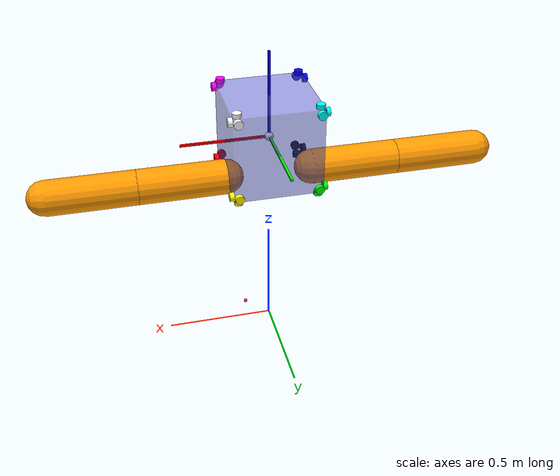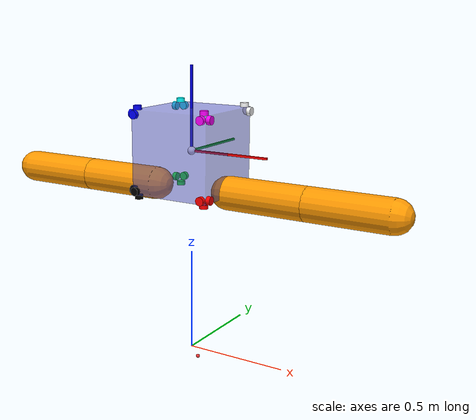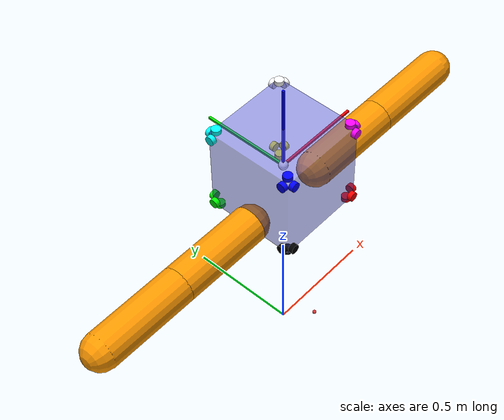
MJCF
<mujoco model="thrustbox0">
	<compiler angle="degree" coordinate="local" inertiafromgeom="true"/>
	<option timestep="0.01" gravity="0 0 0" density="1" viscosity="1e-5" integrator="RK4"/>
	<visual>
		<map force="0.1" zfar="30"/>
		<rgba haze="0.15 0.25 0.35 1"/>
		<global offwidth="2560" offheight="1440" elevation="-20" azimuth="120"/>
	</visual>
	<default>
		<joint armature="1" damping="1" limited="true"/>
		<geom conaffinity="1" condim="1" density="5.0" friction="1 0.5 0.5" margin="0.01" rgba="0.8 0.6 0.4 1"/>
		<default class="shoulder">
			<joint pos="0.0 0.0 0.0" stiffness="100" range="30 70" springref="70"/>
		</default>
		<default class="armgeom">
			<geom size="0.08" type="capsule" rgba="1 .6 0 1"/>
		</default>
		<default class="elbow">
			<joint pos="0.0 0.0 0.0" stiffness="100" range="30 70" springref="70"/>
		</default>
		<default class="thruster">
			<site type="cylinder" size="0.02 0.05" rgba="0.3 0.8 0.3 1" quat="1.0 0.0 0.0 0."/>
		</default>
	</default>
	<asset>
		<texture type="skybox" builtin="gradient" rgb1=".3 .5 .7" rgb2="0 0 0" width="32" height="512"/>
	</asset>
	<worldbody>
		<!-- Satellite -->
		<body name="box" pos="0 0 1">
			<geom name="core" pos="0 0 0" quat="1 0 0 0" size=".2 .2 .2" type="box" rgba="0.3 0.3 0.8 .5" mass=".1"/>
			<joint name="root" type="free" damping="0" armature="0" pos="0 0 0"/>
			<site name="IMUmount" pos="0.0 0.0 0.0" type="sphere" size="0.02" quat="1.0 0.0 0.0 0." rgba="1 1 1 1"/>

			<!-- thruster colors determined by xyz->rgb where +x,+y,+z is r=1,b=1,g=1 and -x,-y,-z is r=0,b=0,g=0 -->
			<!-- Thruster geom that are pointing in +z direction -->
			<site name="motor+Z+x+y" fromto=" .18  .18  .2  .18  .18  .22" class="thruster" rgba="1 1 1 1"/>
			<site name="motor+Z-x+y" fromto="-.18  .18  .2 -.18  .18  .22" class="thruster" rgba="0 1 1 1"/>
			<site name="motor+Z-x-y" fromto="-.18 -.18  .2 -.18 -.18  .22" class="thruster" rgba="0 0 1 1"/>
			<site name="motor+Z+x-y" fromto=" .18 -.18  .2  .18 -.18  .22" class="thruster" rgba="1 0 1 1"/>
			<!-- Thruster geom that are pointing in -z direction -->
			<site name="motor-Z+x+y" fromto=" .18  .18 -.2  .18  .18 -.22" class="thruster" rgba="1 1 0 1"/>
			<site name="motor-Z-x+y" fromto="-.18  .18 -.2 -.18  .18 -.22" class="thruster" rgba="0 1 0 1"/>
			<site name="motor-Z-x-y" fromto="-.18 -.18 -.2 -.18 -.18 -.22" class="thruster" rgba="0 0 0 1"/>
			<site name="motor-Z+x-y" fromto=" .18 -.18 -.2  .18 -.18 -.22" class="thruster" rgba="1 0 0 1"/>
			<!-- Thruster geom that are pointing in +y direction -->
			<site name="motor+Y+x+z" fromto=" .18  .2  .18  .18  .22  .18" class="thruster" rgba="1 1 1 1"/>
			<site name="motor+Y+x-z" fromto=" .18  .2 -.18  .18  .22 -.18" class="thruster" rgba="1 1 0 1"/>
			<site name="motor+Y-x-z" fromto="-.18  .2 -.18 -.18  .22 -.18" class="thruster" rgba="0 1 0 1"/>
			<site name="motor+Y-x+z" fromto="-.18  .2  .18 -.18  .22  .18" class="thruster" rgba="0 1 1 1"/>
			<!-- Thruster geom that are pointing in -y direction -->
			<site name="motor-Y+x+z" fromto=" .18 -.2  .18  .18 -.22  .18" class="thruster" rgba="1 0 1 1"/>
			<site name="motor-Y+x-z" fromto=" .18 -.2 -.18  .18 -.22 -.18" class="thruster" rgba="1 0 0 1"/>
			<site name="motor-Y-x-z" fromto="-.18 -.2 -.18 -.18 -.22 -.18" class="thruster" rgba="0 0 0 1"/>
			<site name="motor-Y-x+z" fromto="-.18 -.2  .18 -.18 -.22  .18" class="thruster" rgba="0 0 1 1"/>
			<!-- Thruster geom that are pointing in +x direction -->
			<site name="motor+X+y+z" fromto=" .2  .18  .18  .22   .18  .18" class="thruster" rgba="1 1 1 1"/>
			<site name="motor+X-y+z" fromto=" .2 -.18  .18  .22  -.18  .18" class="thruster" rgba="1 0 1 1"/>
			<site name="motor+X-y-z" fromto=" .2 -.18 -.18  .22  -.18 -.18" class="thruster" rgba="1 0 0 1"/>
			<site name="motor+X+y-z" fromto=" .2  .18 -.18  .22   .18 -.18" class="thruster" rgba="1 1 0 1"/>
			<!-- Thruster geom that are pointing in -x direction -->
			<site name="motor-X+y+z" fromto="-.2  .18  .18 -.22   .18  .18" class="thruster" rgba="0 1 1 1"/>
			<site name="motor-X-y+z" fromto="-.2 -.18  .18 -.22  -.18  .18" class="thruster" rgba="0 0 1 1"/>
			<site name="motor-X-y-z" fromto="-.2 -.18 -.18 -.22  -.18 -.18" class="thruster" rgba="0 0 0 1"/>
			<site name="motor-X+y-z" fromto="-.2  .18 -.18 -.22   .18 -.18" class="thruster" rgba="0 1 0 1"/>
			<!-- Visualization of the coordinate frame-->
			<site name="qcX" type="box" pos="0.2 0.0 0.0" size="0.2 0.005 0.005" quat=" 1.000  0.0  0.0    0." rgba="1 0 0 1"/>
			<site name="qcY" type="box" pos="0.0 0.2 0.0" size="0.2 0.005 0.005" quat=" 0.707  0.0  0.0    0.707" rgba="0 1 0 1"/>
			<site name="qcZ" type="box" pos="0.0 0.0 0.2" size="0.2 0.005 0.005" quat="-0.707  0.0  0.707  0." rgba="0 0 1 1"/>
			<body name="aux_1" pos="0.2 0 -0.18">
				<joint axis="0 1 0" name="shoulder_1" type="hinge" class="shoulder"/>
				<geom fromto="0.0 0.0 0.0 0.4 0. 0.0" name="left_arm_geom" class="armgeom"/>
				<body pos="0.4 0. 0">
					<joint axis="0 1 0" name="fore_1" type="hinge" class="elbow"/>
					<geom fromto="0.0 0.0 0.0 0.4 0. 0.0" name="left_fore_geom" class="armgeom"/>
				</body>
			</body>
			<body name="aux_2" pos="-0.2 -0. -0.18">
				<joint axis="0 -1 0" name="shoulder_2" type="hinge" class="shoulder"/>
				<geom fromto="0.0 0.0 0.0 -0.4 -0. 0.0" name="right_arm_geom" class="armgeom"/>
				<body pos="-0.4 -0. 0">
					<joint axis="0 -1 0" name="fore_2" type="hinge" class="elbow"/>
					<geom fromto="0.0 0.0 0.0 -0.4 -0. 0.0" name="right_fore_geom" class="armgeom"/>
				</body>
			</body>
		</body>
		<!-- Target -->
		<body name="target" pos=".1 -.1 .01">
			<joint armature="0" axis="1 0 0" damping="0" limited="true" name="target_x" pos="0 0 0" range="-1.27 1.27" ref=".1" stiffness="0" type="slide"/>
			<joint armature="0" axis="0 1 0" damping="0" limited="true" name="target_y" pos="0 0 0" range="-1.27 1.27" ref="-.1" stiffness="0" type="slide"/>
			<geom conaffinity="0" contype="0" name="target" pos="0 0 0" rgba="0.9 0.2 0.2 1" size=".009" type="sphere"/>
		</body>
	</worldbody>
	<actuator>
		<!-- Actuator names are determined by thrusterblock number then axis -->
		<motor name="1X(white)" ctrllimited="true" ctrlrange="0.0 1.0" gear=".0  0. .2  0. 0. 0." site="motor+X+y+z"/>
		<motor name="1Y(white)" ctrllimited="true" ctrlrange="0.0 1.0" gear=".0  0. .2  0. 0. 0." site="motor+Y+x+z"/>
		<motor name="1Z(white)" ctrllimited="true" ctrlrange="0.0 1.0" gear=".0  0. .2  0. 0. 0." site="motor+Z+x+y"/>
		<motor name="2X(cyan)" ctrllimited="true" ctrlrange="0.0 1.0" gear=".0  0. .2  0. 0. 0." site="motor-X+y+z"/>
		<motor name="2Y(cyan)" ctrllimited="true" ctrlrange="0.0 1.0" gear=".0  0. .2  0. 0. 0." site="motor+Y-x+z"/>
		<motor name="2Z(cyan)" ctrllimited="true" ctrlrange="0.0 1.0" gear=".0  0. .2  0. 0. 0." site="motor+Z-x+y"/>
		<motor name="3X(blue)" ctrllimited="true" ctrlrange="0.0 1.0" gear=".0  0. .2  0. 0. 0." site="motor-X-y+z"/>
		<motor name="3Y(blue)" ctrllimited="true" ctrlrange="0.0 1.0" gear=".0  0. .2  0. 0. 0." site="motor-Y-x+z"/>
		<motor name="3Z(blue)" ctrllimited="true" ctrlrange="0.0 1.0" gear=".0  0. .2  0. 0. 0." site="motor+Z-x-y"/>
		<motor name="4X(purple)" ctrllimited="true" ctrlrange="0.0 1.0" gear=".0  0. .2  0. 0. 0." site="motor+X-y+z"/>
		<motor name="4Y(purple)" ctrllimited="true" ctrlrange="0.0 1.0" gear=".0  0. .2  0. 0. 0." site="motor-Y+x+z"/>
		<motor name="4Z(purple)" ctrllimited="true" ctrlrange="0.0 1.0" gear=".0  0. .2  0. 0. 0." site="motor+Z+x-y"/>
		<motor name="5X(yellow)" ctrllimited="true" ctrlrange="0.0 1.0" gear=".0  0. .2  0. 0. 0." site="motor+X+y-z"/>
		<motor name="5Y(yellow)" ctrllimited="true" ctrlrange="0.0 1.0" gear=".0  0. .2  0. 0. 0." site="motor+Y+x-z"/>
		<motor name="5Z(yellow)" ctrllimited="true" ctrlrange="0.0 1.0" gear=".0  0. .2  0. 0. 0." site="motor-Z+x+y"/>
		<motor name="6X(green)" ctrllimited="true" ctrlrange="0.0 1.0" gear=".0  0. .2  0. 0. 0." site="motor-X+y-z"/>
		<motor name="6Y(green)" ctrllimited="true" ctrlrange="0.0 1.0" gear=".0  0. .2  0. 0. 0." site="motor+Y-x-z"/>
		<motor name="6Z(green)" ctrllimited="true" ctrlrange="0.0 1.0" gear=".0  0. .2  0. 0. 0." site="motor-Z-x+y"/>
		<motor name="7X(black)" ctrllimited="true" ctrlrange="0.0 1.0" gear=".0  0. .2  0. 0. 0." site="motor-X-y-z"/>
		<motor name="7Y(black)" ctrllimited="true" ctrlrange="0.0 1.0" gear=".0  0. .2  0. 0. 0." site="motor-Y-x-z"/>
		<motor name="7Z(black)" ctrllimited="true" ctrlrange="0.0 1.0" gear=".0  0. .2  0. 0. 0." site="motor-Z-x-y"/>
		<motor name="8X(red)" ctrllimited="true" ctrlrange="0.0 1.0" gear=".0  0. .2  0. 0. 0." site="motor+X-y-z"/>
		<motor name="8Y(red)" ctrllimited="true" ctrlrange="0.0 1.0" gear=".0  0. .2  0. 0. 0." site="motor-Y+x-z"/>
		<motor name="8Z(red)" ctrllimited="true" ctrlrange="0.0 1.0" gear=".0  0. .2  0. 0. 0." site="motor-Z+x-y"/>
		<motor ctrllimited="true" ctrlrange="-1 0" joint="shoulder_1" gear="150"/>
		<motor ctrllimited="true" ctrlrange="-1 0" joint="fore_1" gear="150"/>
		<motor ctrllimited="true" ctrlrange="-1 0" joint="shoulder_2" gear="150"/>
		<motor ctrllimited="true" ctrlrange="-1 0" joint="fore_2" gear="150"/>
	</actuator>

	<sensor>
		<accelerometer name="accel" site = "IMUmount"/>
		<gyro name="gyro" site = "IMUmount"/>
	</sensor>
</mujoco>
